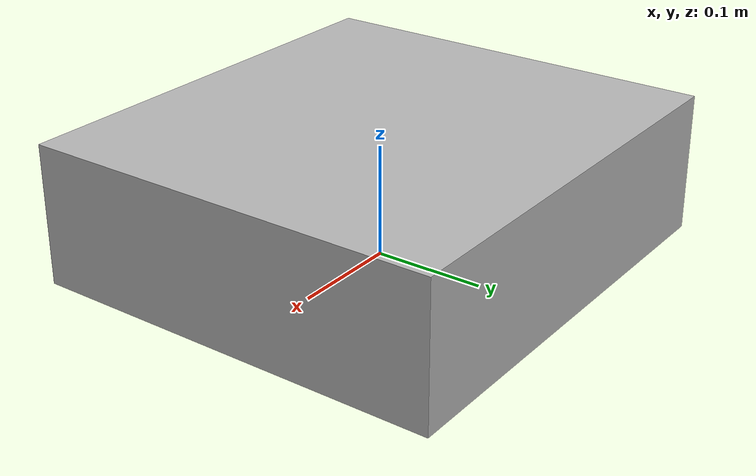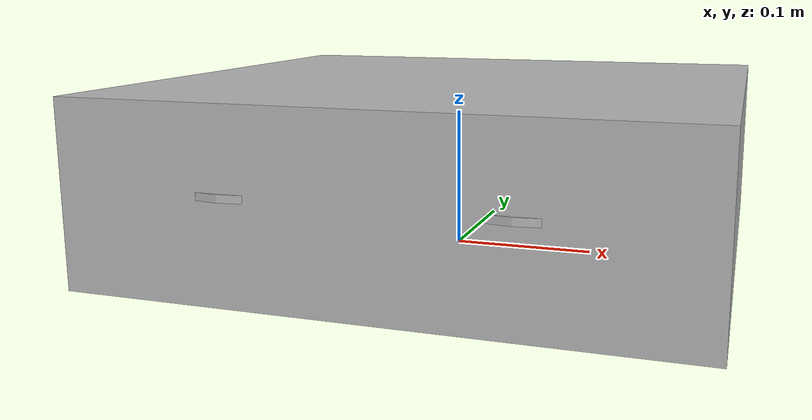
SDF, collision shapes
<?xml version="1.0" encoding="UTF-8"?>
<sdf version="1.9">
  <model name="matrice_100">
    <pose>0 0 0.062 0 0 0</pose>
    <link name="M300/base_link">
      <pose>0 0 0 0 0 0</pose>
      <visual name="M300/base_link_visual">
          <geometry>
              <mesh>
                  <uri>model://matrice_300/meshes/DJI_M300.glb</uri>
                  <scale>0.001 0.001 0.001</scale>
              </mesh>
          </geometry>
      </visual>
      <collision name="M300/base_link_collision">
          <geometry>
            <box>
                <size>0.405 0.375 0.125</size>
            </box>
          </geometry>
      </collision>
      <inertial>
        <pose frame="">0 0 0 0 -0 0</pose>
        <mass>0.5</mass>
        <inertia>
            <ixx>0.0347563</ixx>
            <ixy>0</ixy>
            <ixz>0</ixz>
            <iyy>0.07</iyy>
            <iyz>0</iyz>
            <izz>0.0977</izz>
        </inertia>
    </inertial>
    </link>
    <link name="M300/rotor_0">
      <pose>0.08949 -0.08957 0.006186 0 0 0</pose>
      <visual name="M300/robot_0_visual">
          <geometry>
              <mesh>
                  <uri>model://matrice_300/meshes/propeller.glb</uri>
                  <scale>0.1 0.1 0.1</scale>
              </mesh>
          </geometry>
      </visual>
      <collision name="M300/robot_0_collision">
          <geometry>
            <cylinder>
                <length>0.005</length>
                <radius>0.1</radius>
            </cylinder>
          </geometry>
      </collision>
      <inertial>
        <pose>0.00049191638840683828 0.00081433819094126048 -0.0036489142826166294 -1.6180142047944368 -1.5703008323144028 2.7352454567488156</pose>
        <mass>0.69227993666597625</mass>
        <inertia>
          <ixx>0.0016232769077328535</ixx>
          <ixy>0</ixy>
          <ixz>0</ixz>
          <iyy>0.0016169599251112186</iyy>
          <iyz>0</iyz>
          <izz>0.0000067524615056079387</izz>
        </inertia>
      </inertial>
    </link>
    <joint name="M300/rotor_0_joint" type="revolute">
      <child>M300/rotor_0</child>
      <parent>M300/base_link</parent>
      <axis>
        <xyz>0 0 1</xyz>
        <limit>
          <lower>-1e+16</lower>
          <upper>1e+16</upper>
        </limit>
        <dynamics>
            <spring_reference>0</spring_reference>
            <spring_stiffness>0</spring_stiffness>
        </dynamics>
        <use_parent_model_frame>1</use_parent_model_frame>
      </axis>
    </joint>

    <link name="M300/rotor_1">
      <pose>-.1002 0.077 0.006186 0 0 0</pose>
      <visual name="M300/rotor_1_visual">
          <geometry>
              <mesh>
                  <uri>model://matrice_300/meshes/propeller.glb</uri>
                  <scale>0.1 0.1 0.1</scale>
              </mesh>
          </geometry>
      </visual>
      <collision name="M300/rotor_1_collision">
          <geometry>
            <cylinder>
                <length>0.005</length>
                <radius>0.1</radius>
            </cylinder>
          </geometry>
      </collision>
      <inertial>
        <pose>0.00049191638840683828 0.00081433819094126048 -0.0036489142826166294 -1.6180142047944368 -1.5703008323144028 2.7352454567488156</pose>
        <mass>0.69227993666597625</mass>
        <inertia>
          <ixx>0.0016232769077328535</ixx>
          <ixy>0</ixy>
          <ixz>0</ixz>
          <iyy>0.0016169599251112186</iyy>
          <iyz>0</iyz>
          <izz>0.0000067524615056079387</izz>
        </inertia>
      </inertial>
    </link>
    <joint name="M300/rotor_1_joint" type="revolute">
      <child>M300/rotor_1</child>
      <parent>M300/base_link</parent>
      <axis>
        <xyz>0 0 1</xyz>
        <limit>
          <lower>-1e+16</lower>
          <upper>1e+16</upper>
        </limit>
        <dynamics>
            <spring_reference>0</spring_reference>
            <spring_stiffness>0</spring_stiffness>
        </dynamics>
        <use_parent_model_frame>1</use_parent_model_frame>
      </axis>
    </joint>

    <link name="M300/rotor_2">
      <pose>0.1002 0.077 0.006186 0 0 0</pose>
      <visual name="visual">
          <geometry>
              <mesh>
                  <uri>model://matrice_300/meshes/propeller.glb</uri>
                  <scale>0.1 0.1 0.1</scale>
              </mesh>
          </geometry>
      </visual>
      <collision name="collision">
          <geometry>
            <cylinder>
                <length>0.005</length>
                <radius>0.1</radius>
            </cylinder>
          </geometry>
      </collision>
      <inertial>
        <pose>0.00049191638840683828 0.00081433819094126048 -0.0036489142826166294 -1.6180142047944368 -1.5703008323144028 2.7352454567488156</pose>
        <mass>0.69227993666597625</mass>
        <inertia>
          <ixx>0.0016232769077328535</ixx>
          <ixy>0</ixy>
          <ixz>0</ixz>
          <iyy>0.0016169599251112186</iyy>
          <iyz>0</iyz>
          <izz>0.0000067524615056079387</izz>
        </inertia>
      </inertial>
    </link>
    <joint name="M300/rotor_2_joint" type="revolute">
      <child>M300/rotor_2</child>
      <parent>M300/base_link</parent>
      <axis>
        <xyz>0 0 1</xyz>
        <limit>
          <lower>-1e+16</lower>
          <upper>1e+16</upper>
        </limit>
        <dynamics>
            <spring_reference>0</spring_reference>
            <spring_stiffness>0</spring_stiffness>
        </dynamics>
        <use_parent_model_frame>1</use_parent_model_frame>
      </axis>
    </joint>

    <link name="M300/rotor_3">
      <pose>-0.08949 -0.08957 0.006186 0 0 0</pose>
      <visual name="visual">
          <geometry>
              <mesh>
                  <uri>model://matrice_300/meshes/propeller.glb</uri>
                  <scale>0.1 0.1 0.1</scale>
              </mesh>
          </geometry>
      </visual>
      <collision name="collision">
          <geometry>
            <cylinder>
                <length>0.005</length>
                <radius>0.1</radius>
            </cylinder>
          </geometry>
      </collision>
      <inertial>
        <pose>0.00049191638840683828 0.00081433819094126048 -0.0036489142826166294 -1.6180142047944368 -1.5703008323144028 2.7352454567488156</pose>
        <mass>0.69227993666597625</mass>
        <inertia>
          <ixx>0.0016232769077328535</ixx>
          <ixy>0</ixy>
          <ixz>0</ixz>
          <iyy>0.0016169599251112186</iyy>
          <iyz>0</iyz>
          <izz>0.0000067524615056079387</izz>
        </inertia>
      </inertial>
    </link>
    <joint name="M300/rotor_3_joint" type="revolute">
      <child>M300/rotor_3</child>
      <parent>M300/base_link</parent>
      <axis>
        <xyz>0 0 1</xyz>
        <limit>
          <lower>-1e+16</lower>
          <upper>1e+16</upper>
        </limit>
        <dynamics>
            <spring_reference>0</spring_reference>
            <spring_stiffness>0</spring_stiffness>
        </dynamics>
        <use_parent_model_frame>1</use_parent_model_frame>
      </axis>
    </joint>
    <plugin
      filename="gz-sim-multicopter-motor-model-system"
      name="gz::sim::systems::MulticopterMotorModel">
      <robotNamespace>M300</robotNamespace>
      <jointName>M300/rotor_0_joint</jointName>
      <linkName>M300/rotor_0</linkName>
      <turningDirection>ccw</turningDirection>
      <timeConstantUp>0.0125</timeConstantUp>
      <timeConstantDown>0.025</timeConstantDown>
      <maxRotVelocity>800.0</maxRotVelocity>
      <motorConstant>8.54858e-06</motorConstant>
      <momentConstant>0.016</momentConstant>
      <commandSubTopic>gazebo/command/motor_speed</commandSubTopic>
      <motorNumber>0</motorNumber>
      <rotorDragCoefficient>8.06428e-05</rotorDragCoefficient>
      <rollingMomentCoefficient>1e-06</rollingMomentCoefficient>
      <motorSpeedPubTopic>motor_speed/0</motorSpeedPubTopic>
      <rotorVelocitySlowdownSim>10</rotorVelocitySlowdownSim>
      <motorType>velocity</motorType>
    </plugin>
    <plugin
      filename="gz-sim-multicopter-motor-model-system"
      name="gz::sim::systems::MulticopterMotorModel">
      <robotNamespace>M300</robotNamespace>
      <jointName>M300/rotor_1_joint</jointName>
      <linkName>M300/rotor_1</linkName>
      <turningDirection>ccw</turningDirection>
      <timeConstantUp>0.0125</timeConstantUp>
      <timeConstantDown>0.025</timeConstantDown>
      <maxRotVelocity>800.0</maxRotVelocity>
      <motorConstant>8.54858e-06</motorConstant>
      <momentConstant>0.016</momentConstant>
      <commandSubTopic>gazebo/command/motor_speed</commandSubTopic>
      <motorNumber>1</motorNumber>
      <rotorDragCoefficient>8.06428e-05</rotorDragCoefficient>
      <rollingMomentCoefficient>1e-06</rollingMomentCoefficient>
      <motorSpeedPubTopic>motor_speed/1</motorSpeedPubTopic>
      <rotorVelocitySlowdownSim>10</rotorVelocitySlowdownSim>
      <motorType>velocity</motorType>
    </plugin>
    <plugin
      filename="gz-sim-multicopter-motor-model-system"
      name="gz::sim::systems::MulticopterMotorModel">
      <robotNamespace>M300</robotNamespace>
      <jointName>M300/rotor_2_joint</jointName>
      <linkName>M300/rotor_2</linkName>
      <turningDirection>cw</turningDirection>
      <timeConstantUp>0.0125</timeConstantUp>
      <timeConstantDown>0.025</timeConstantDown>
      <maxRotVelocity>800.0</maxRotVelocity>
      <motorConstant>8.54858e-06</motorConstant>
      <momentConstant>0.016</momentConstant>
      <commandSubTopic>gazebo/command/motor_speed</commandSubTopic>
      <motorNumber>2</motorNumber>
      <rotorDragCoefficient>8.06428e-05</rotorDragCoefficient>
      <rollingMomentCoefficient>1e-06</rollingMomentCoefficient>
      <motorSpeedPubTopic>motor_speed/2</motorSpeedPubTopic>
      <rotorVelocitySlowdownSim>10</rotorVelocitySlowdownSim>
      <motorType>velocity</motorType>
    </plugin>
    <plugin
      filename="gz-sim-multicopter-motor-model-system"
      name="gz::sim::systems::MulticopterMotorModel">
      <robotNamespace>M300</robotNamespace>
      <jointName>M300/rotor_3_joint</jointName>
      <linkName>M300/rotor_3</linkName>
      <turningDirection>cw</turningDirection>
      <timeConstantUp>0.0125</timeConstantUp>
      <timeConstantDown>0.025</timeConstantDown>
      <maxRotVelocity>800.0</maxRotVelocity>
      <motorConstant>8.54858e-06</motorConstant>
      <momentConstant>0.016</momentConstant>
      <commandSubTopic>gazebo/command/motor_speed</commandSubTopic>
      <motorNumber>3</motorNumber>
      <rotorDragCoefficient>8.06428e-05</rotorDragCoefficient>
      <rollingMomentCoefficient>1e-06</rollingMomentCoefficient>
      <motorSpeedPubTopic>motor_speed/3</motorSpeedPubTopic>
      <rotorVelocitySlowdownSim>10</rotorVelocitySlowdownSim>
      <motorType>velocity</motorType>
    </plugin>
  </model>
</sdf>
